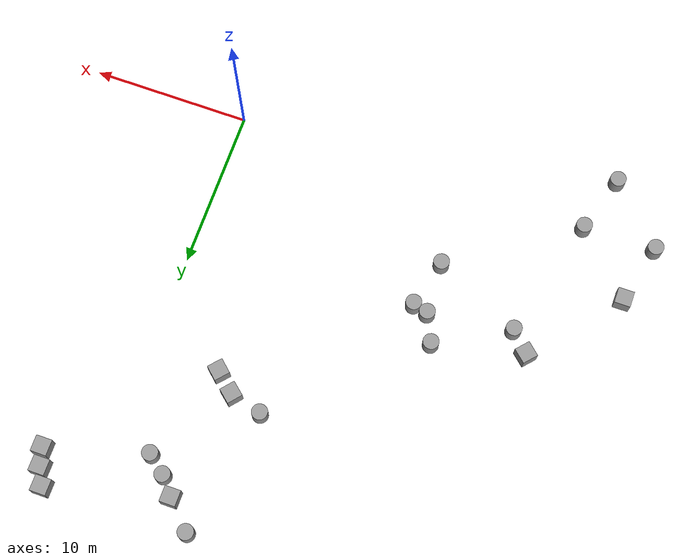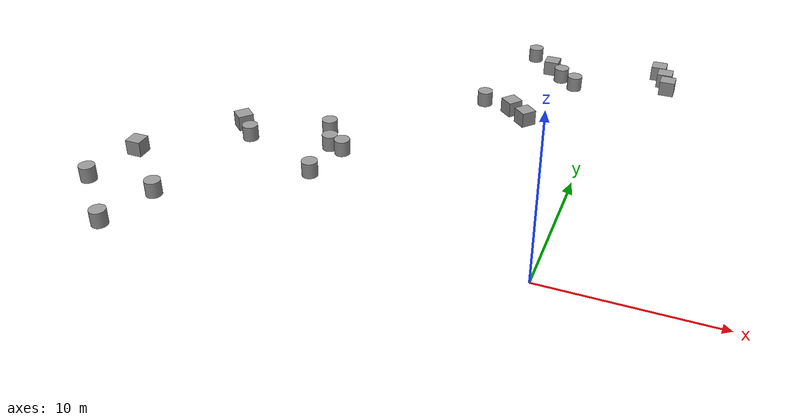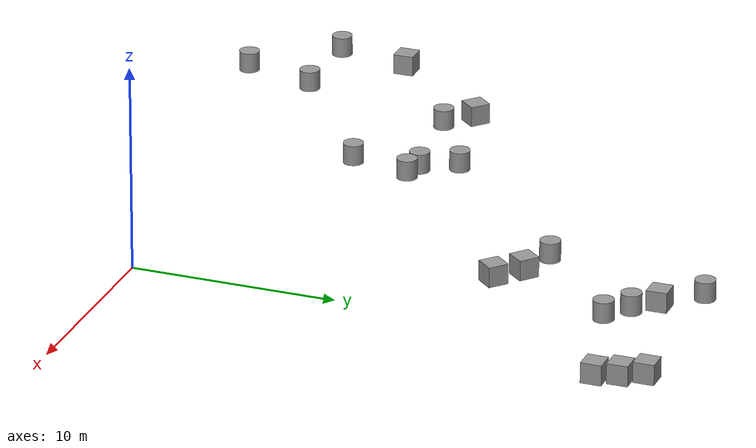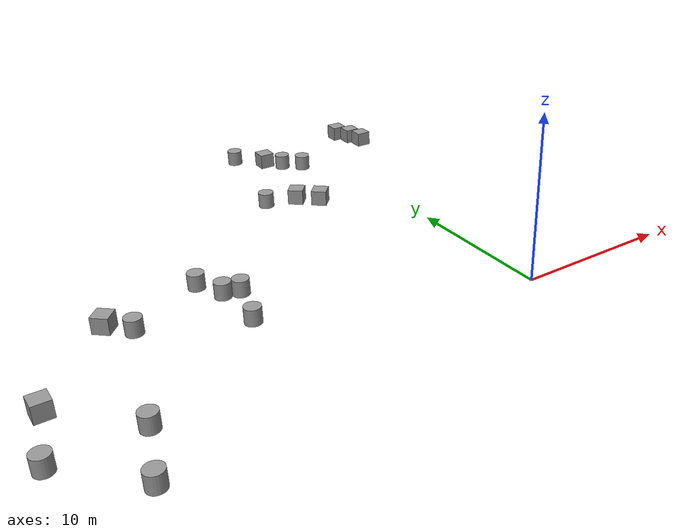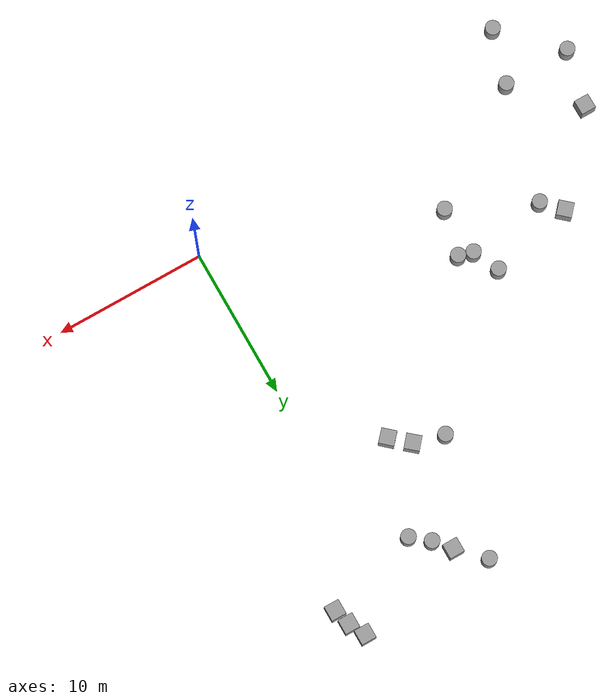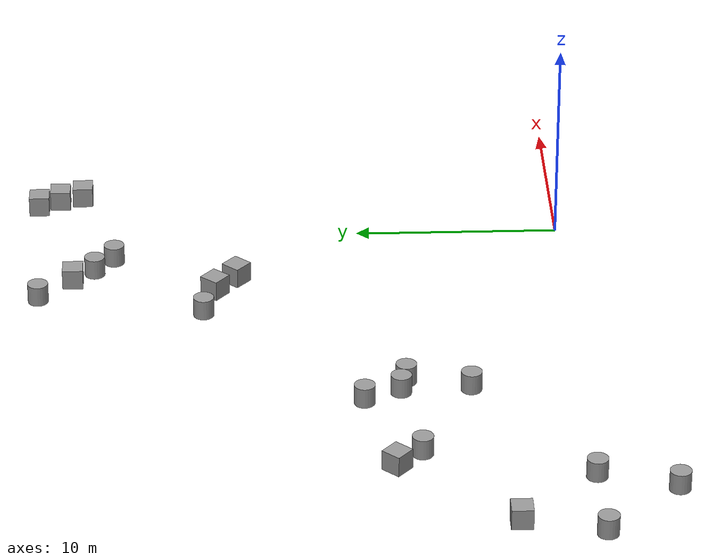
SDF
<sdf version="1.4">
 <world name="default">
  <scene><sky><clouds><speed>12</speed></clouds></sky><ambient>1 1 1 1</ambient><shadows>false</shadows></scene>
  <include><uri>model://urdf/models/sun</uri></include>
  <physics name="default_physics" type="ode">
   <max_step_size>0.0025</max_step_size>
   <real_time_factor>0</real_time_factor>
   <real_time_update_rate>1000</real_time_update_rate>
   <gravity>0 0 -9.8</gravity>
  </physics>
  <model name="box_0">
   <pose>-4.56799 24.1038 0.5 0 -0 0</pose>
   <link name="link">
    <inertial>
     <mass>1</mass>
     <inertia>
      <ixx>0.166667</ixx>
      <ixy>0</ixy>
      <ixz>0</ixz>
      <iyy>0.166667</iyy>
      <iyz>0</iyz>
      <izz>0.166667</izz>
     </inertia>
    </inertial>
    <collision name="collision"><geometry><box><size>1 1 1</size></box></geometry></collision>
    <visual name="visual">
     <geometry><box><size>1 1 1</size></box></geometry>
     <material>
      <script><name>Gazebo/Grey</name><uri>file://media/materials/scripts/gazebo.material</uri></script>
     </material>
    </visual>
   </link>
  </model>
  <model name="cylinder_1">
   <pose>-15.947 10.1957 0.499964 0 -0 0</pose>
   <link name="link">
    <inertial>
     <mass>1</mass>
     <inertia><ixx>0.145833</ixx><ixy>0</ixy><ixz>0</ixz><iyy>0.145833</iyy><iyz>0</iyz><izz>0.125</izz></inertia>
    </inertial>
    <collision name="collision">
     <geometry><cylinder><radius>0.5</radius><length>1</length></cylinder></geometry>
    </collision>
    <visual name="visual">
     <geometry><cylinder><radius>0.5</radius><length>1</length></cylinder></geometry>
     <material>
      <script><name>Gazebo/Grey</name><uri>file://media/materials/scripts/gazebo.material</uri></script>
     </material>
    </visual>
   </link>
  </model>
  <model name="cylinder_2">
   <pose>-7.7324 17.6843 0.499964 0 -0 0</pose>
   <link name="link">
    <inertial>
     <mass>1</mass>
     <inertia><ixx>0.145833</ixx><ixy>0</ixy><ixz>0</ixz><iyy>0.145833</iyy><iyz>0</iyz><izz>0.125</izz></inertia>
    </inertial>
    <collision name="collision">
     <geometry><cylinder><radius>0.5</radius><length>1</length></cylinder></geometry>
    </collision>
    <visual name="visual">
     <geometry><cylinder><radius>0.5</radius><length>1</length></cylinder></geometry>
     <material>
      <script><name>Gazebo/Grey</name><uri>file://media/materials/scripts/gazebo.material</uri></script>
     </material>
    </visual>
   </link>
  </model>
  <model name="box_3">
   <pose>3.68267 23.8407 0.5 0 -0 0</pose>
   <link name="link">
    <inertial>
     <mass>1</mass>
     <inertia>
      <ixx>0.166667</ixx>
      <ixy>0</ixy>
      <ixz>0</ixz>
      <iyy>0.166667</iyy>
      <iyz>0</iyz>
      <izz>0.166667</izz>
     </inertia>
    </inertial>
    <collision name="collision"><geometry><box><size>1 1 1</size></box></geometry></collision>
    <visual name="visual">
     <geometry><box><size>1 1 1</size></box></geometry>
     <material>
      <script><name>Gazebo/Grey</name><uri>file://media/materials/scripts/gazebo.material</uri></script>
     </material>
    </visual>
   </link>
  </model>
  <model name="cylinder_4">
   <pose>-20.4117 7.71574 0.499964 0 -0 0.00284</pose>
   <link name="link">
    <inertial>
     <mass>1</mass>
     <inertia><ixx>0.145833</ixx><ixy>0</ixy><ixz>0</ixz><iyy>0.145833</iyy><iyz>0</iyz><izz>0.125</izz></inertia>
    </inertial>
    <collision name="collision">
     <geometry><cylinder><radius>0.5</radius><length>1</length></cylinder></geometry>
    </collision>
    <visual name="visual">
     <geometry><cylinder><radius>0.5</radius><length>1</length></cylinder></geometry>
     <material>
      <script><name>Gazebo/Grey</name><uri>file://media/materials/scripts/gazebo.material</uri></script>
     </material>
    </visual>
   </link>
  </model>
  <model name="cylinder_5">
   <pose>-14.1689 8.18073 0.499964 0 -0 0</pose>
   <link name="link">
    <inertial>
     <mass>1</mass>
     <inertia><ixx>0.145833</ixx><ixy>0</ixy><ixz>0</ixz><iyy>0.145833</iyy><iyz>0</iyz><izz>0.125</izz></inertia>
    </inertial>
    <collision name="collision">
     <geometry><cylinder><radius>0.5</radius><length>1</length></cylinder></geometry>
    </collision>
    <visual name="visual">
     <geometry><cylinder><radius>0.5</radius><length>1</length></cylinder></geometry>
     <material>
      <script><name>Gazebo/Grey</name><uri>file://media/materials/scripts/gazebo.material</uri></script>
     </material>
    </visual>
   </link>
  </model>
  <model name="box_6">
   <pose>-5.71205 17.1305 0.5 0 -0 0.866563</pose>
   <link name="link">
    <inertial>
     <mass>1</mass>
     <inertia>
      <ixx>0.166667</ixx>
      <ixy>0</ixy>
      <ixz>0</ixz>
      <iyy>0.166667</iyy>
      <iyz>0</iyz>
      <izz>0.166667</izz>
     </inertia>
    </inertial>
    <collision name="collision"><geometry><box><size>1 1 1</size></box></geometry></collision>
    <visual name="visual">
     <geometry><box><size>1 1 1</size></box></geometry>
     <material>
      <script><name>Gazebo/Grey</name><uri>file://media/materials/scripts/gazebo.material</uri></script>
     </material>
    </visual>
   </link>
  </model>
  <model name="cylinder_7">
   <pose>-15.13 8.45853 0.499964 0 -0 0</pose>
   <link name="link">
    <inertial>
     <mass>1</mass>
     <inertia><ixx>0.145833</ixx><ixy>0</ixy><ixz>0</ixz><iyy>0.145833</iyy><iyz>0</iyz><izz>0.125</izz></inertia>
    </inertial>
    <collision name="collision">
     <geometry><cylinder><radius>0.5</radius><length>1</length></cylinder></geometry>
    </collision>
    <visual name="visual">
     <geometry><cylinder><radius>0.5</radius><length>1</length></cylinder></geometry>
     <material>
      <script><name>Gazebo/Grey</name><uri>file://media/materials/scripts/gazebo.material</uri></script>
     </material>
    </visual>
   </link>
  </model>
  <model name="box_8">
   <pose>-21.5631 8.93507 0.499988 0 -2.3e-05 0.840932</pose>
   <link name="link">
    <inertial>
     <mass>1</mass>
     <inertia>
      <ixx>0.166667</ixx>
      <ixy>0</ixy>
      <ixz>0</ixz>
      <iyy>0.166667</iyy>
      <iyz>0</iyz>
      <izz>0.166667</izz>
     </inertia>
    </inertial>
    <collision name="collision"><geometry><box><size>1 1 1</size></box></geometry></collision>
    <visual name="visual">
     <geometry><box><size>1 1 1</size></box></geometry>
     <material>
      <script><name>Gazebo/Grey</name><uri>file://media/materials/scripts/gazebo.material</uri></script>
     </material>
    </visual>
   </link>
  </model>
  <model name="cylinder_9">
   <pose>-23.6267 -3.66961 0.499964 0 -0 0</pose>
   <link name="link">
    <inertial>
     <mass>1</mass>
     <inertia><ixx>0.145833</ixx><ixy>0</ixy><ixz>0</ixz><iyy>0.145833</iyy><iyz>0</iyz><izz>0.125</izz></inertia>
    </inertial>
    <collision name="collision">
     <geometry><cylinder><radius>0.5</radius><length>1</length></cylinder></geometry>
    </collision>
    <visual name="visual">
     <geometry><cylinder><radius>0.5</radius><length>1</length></cylinder></geometry>
     <material>
      <script><name>Gazebo/Grey</name><uri>file://media/materials/scripts/gazebo.material</uri></script>
     </material>
    </visual>
   </link>
  </model>
  <model name="cylinder_10">
   <pose>-14.9396 5.15552 0.499964 0 0 -0.255766</pose>
   <link name="link">
    <inertial>
     <mass>1</mass>
     <inertia><ixx>0.145833</ixx><ixy>0</ixy><ixz>0</ixz><iyy>0.145833</iyy><iyz>0</iyz><izz>0.125</izz></inertia>
    </inertial>
    <collision name="collision">
     <geometry><cylinder><radius>0.5</radius><length>1</length></cylinder></geometry>
    </collision>
    <visual name="visual">
     <geometry><cylinder><radius>0.5</radius><length>1</length></cylinder></geometry>
     <material>
      <script><name>Gazebo/Grey</name><uri>file://media/materials/scripts/gazebo.material</uri></script>
     </material>
    </visual>
   </link>
  </model>
  <model name="box_11">
   <pose>3.35336 24.965 0.5 0 -0 0</pose>
   <link name="link">
    <inertial>
     <mass>1</mass>
     <inertia>
      <ixx>0.166667</ixx>
      <ixy>0</ixy>
      <ixz>0</ixz>
      <iyy>0.166667</iyy>
      <iyz>0</iyz>
      <izz>0.166667</izz>
     </inertia>
    </inertial>
    <collision name="collision"><geometry><box><size>1 1 1</size></box></geometry></collision>
    <visual name="visual">
     <geometry><box><size>1 1 1</size></box></geometry>
     <material>
      <script><name>Gazebo/Grey</name><uri>file://media/materials/scripts/gazebo.material</uri></script>
     </material>
    </visual>
   </link>
  </model>
  <model name="box_12">
   <pose>2.80442 26.0178 0.5 0 0 -0.001258</pose>
   <link name="link">
    <inertial>
     <mass>1</mass>
     <inertia>
      <ixx>0.166667</ixx>
      <ixy>0</ixy>
      <ixz>0</ixz>
      <iyy>0.166667</iyy>
      <iyz>0</iyz>
      <izz>0.166667</izz>
     </inertia>
    </inertial>
    <collision name="collision"><geometry><box><size>1 1 1</size></box></geometry></collision>
    <visual name="visual">
     <geometry><box><size>1 1 1</size></box></geometry>
     <material>
      <script><name>Gazebo/Grey</name><uri>file://media/materials/scripts/gazebo.material</uri></script>
     </material>
    </visual>
   </link>
  </model>
  <model name="box_13">
   <pose>-26.1533 3.63588 0.5 0 -0 0</pose>
   <link name="link">
    <inertial>
     <mass>1</mass>
     <inertia>
      <ixx>0.166667</ixx>
      <ixy>0</ixy>
      <ixz>0</ixz>
      <iyy>0.166667</iyy>
      <iyz>0</iyz>
      <izz>0.166667</izz>
     </inertia>
    </inertial>
    <collision name="collision"><geometry><box><size>1 1 1</size></box></geometry></collision>
    <visual name="visual">
     <geometry><box><size>1 1 1</size></box></geometry>
     <material>
      <script><name>Gazebo/Grey</name><uri>file://media/materials/scripts/gazebo.material</uri></script>
     </material>
    </visual>
   </link>
  </model>
  <model name="cylinder_14">
   <pose>-3.65866 23.0527 0.499964 0 -0 0</pose>
   <link name="link">
    <inertial>
     <mass>1</mass>
     <inertia><ixx>0.145833</ixx><ixy>0</ixy><ixz>0</ixz><iyy>0.145833</iyy><iyz>0</iyz><izz>0.125</izz></inertia>
    </inertial>
    <collision name="collision">
     <geometry><cylinder><radius>0.5</radius><length>1</length></cylinder></geometry>
    </collision>
    <visual name="visual">
     <geometry><cylinder><radius>0.5</radius><length>1</length></cylinder></geometry>
     <material>
      <script><name>Gazebo/Grey</name><uri>file://media/materials/scripts/gazebo.material</uri></script>
     </material>
    </visual>
   </link>
  </model>
  <model name="cylinder_15">
   <pose>-6.18447 25.7503 0.499964 0 -0 0</pose>
   <link name="link">
    <inertial>
     <mass>1</mass>
     <inertia><ixx>0.145833</ixx><ixy>0</ixy><ixz>0</ixz><iyy>0.145833</iyy><iyz>0</iyz><izz>0.125</izz></inertia>
    </inertial>
    <collision name="collision">
     <geometry><cylinder><radius>0.5</radius><length>1</length></cylinder></geometry>
    </collision>
    <visual name="visual">
     <geometry><cylinder><radius>0.5</radius><length>1</length></cylinder></geometry>
     <material>
      <script><name>Gazebo/Grey</name><uri>file://media/materials/scripts/gazebo.material</uri></script>
     </material>
    </visual>
   </link>
  </model>
  <model name="cylinder_16">
   <pose>-27.0726 -0.112092 0.499964 0 -0 0</pose>
   <link name="link">
    <inertial>
     <mass>1</mass>
     <inertia><ixx>0.145833</ixx><ixy>0</ixy><ixz>0</ixz><iyy>0.145833</iyy><iyz>0</iyz><izz>0.125</izz></inertia>
    </inertial>
    <collision name="collision">
     <geometry><cylinder><radius>0.5</radius><length>1</length></cylinder></geometry>
    </collision>
    <visual name="visual">
     <geometry><cylinder><radius>0.5</radius><length>1</length></cylinder></geometry>
     <material>
      <script><name>Gazebo/Grey</name><uri>file://media/materials/scripts/gazebo.material</uri></script>
     </material>
    </visual>
   </link>
  </model>
  <model name="cylinder_17">
   <pose>-2.50976 22.1185 0.499964 0 -0 0</pose>
   <link name="link">
    <inertial>
     <mass>1</mass>
     <inertia><ixx>0.145833</ixx><ixy>0</ixy><ixz>0</ixz><iyy>0.145833</iyy><iyz>0</iyz><izz>0.125</izz></inertia>
    </inertial>
    <collision name="collision">
     <geometry><cylinder><radius>0.5</radius><length>1</length></cylinder></geometry>
    </collision>
    <visual name="visual">
     <geometry><cylinder><radius>0.5</radius><length>1</length></cylinder></geometry>
     <material>
      <script><name>Gazebo/Grey</name><uri>file://media/materials/scripts/gazebo.material</uri></script>
     </material>
    </visual>
   </link>
  </model>
  <model name="box_18">
   <pose>-4.50687 16.0757 0.5 0 -0 0.840941</pose>
   <link name="link">
    <inertial>
     <mass>1</mass>
     <inertia>
      <ixx>0.166667</ixx>
      <ixy>0</ixy>
      <ixz>0</ixz>
      <iyy>0.166667</iyy>
      <iyz>0</iyz>
      <izz>0.166667</izz>
     </inertia>
    </inertial>
    <collision name="collision"><geometry><box><size>1 1 1</size></box></geometry></collision>
    <visual name="visual">
     <geometry><box><size>1 1 1</size></box></geometry>
     <material>
      <script><name>Gazebo/Grey</name><uri>file://media/materials/scripts/gazebo.material</uri></script>
     </material>
    </visual>
   </link>
  </model>
  <model name="cylinder_19">
   <pose>-22.5155 -0.048323 0.499964 0 -0 0</pose>
   <link name="link">
    <inertial>
     <mass>1</mass>
     <inertia><ixx>0.145833</ixx><ixy>0</ixy><ixz>0</ixz><iyy>0.145833</iyy><iyz>0</iyz><izz>0.125</izz></inertia>
    </inertial>
    <collision name="collision">
     <geometry><cylinder><radius>0.5</radius><length>1</length></cylinder></geometry>
    </collision>
    <visual name="visual">
     <geometry><cylinder><radius>0.5</radius><length>1</length></cylinder></geometry>
     <material>
      <script><name>Gazebo/Grey</name><uri>file://media/materials/scripts/gazebo.material</uri></script>
     </material>
    </visual>
   </link>
  </model>
 </world>
</sdf>
